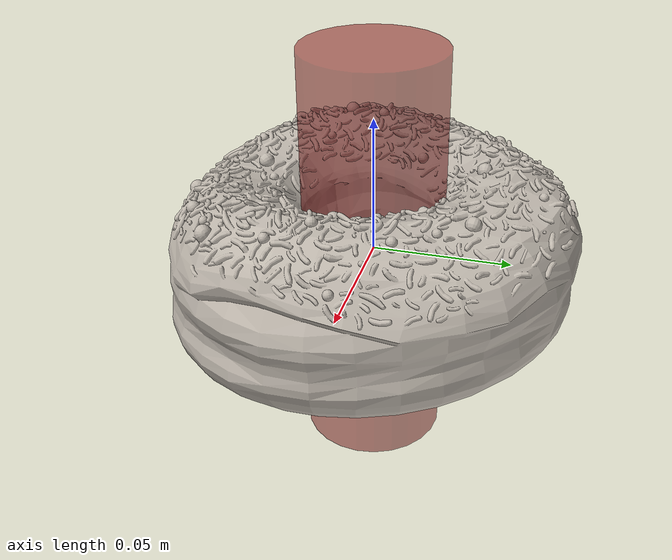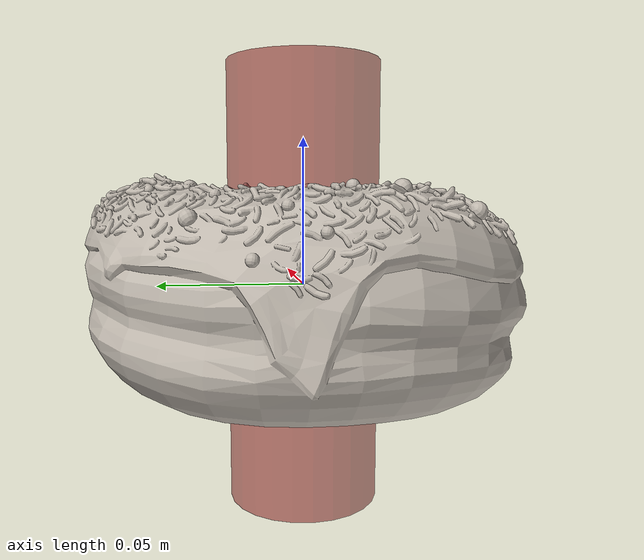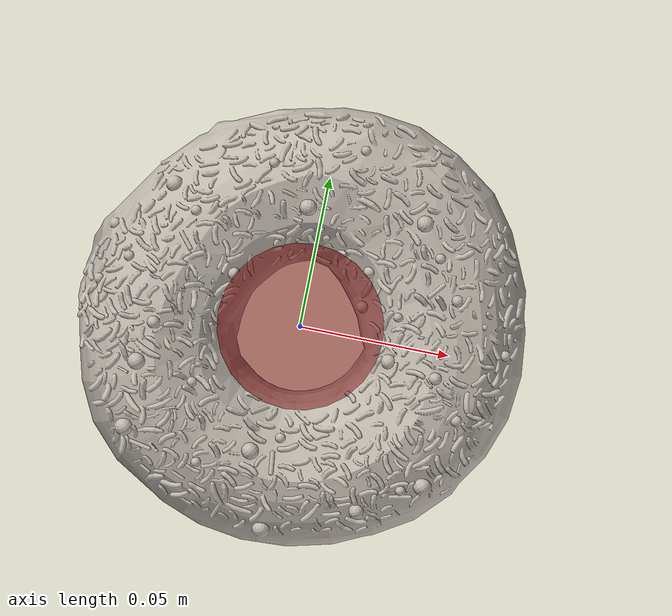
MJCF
<?xml version='1.0' encoding='utf-8'?>
<mujoco model="bottled_water_21">
  <asset>
    <mesh file="visual/model_normalized_0.obj" name="model_normalized_0_vis" scale="0.15 0.15 0.15" refquat="1.0 0.0 0.0 0.0" />
    <texture type="2d" name="image0" file="visual/image0.png" />
    <material name="Base.004" texture="image0" specular="0.5" shininess="0.359999993" />
    </asset>
  <default>
    <default class="region">
      <geom group="1" conaffinity="0" contype="0" rgba="0 1 0 0" />
      </default>
    <default class="collision">
      <geom group="0" rgba="0.5 0 0 0.5" density="1000.0" />
      </default>
    </default>
  <worldbody>
    <body>
      <body name="object">
        <geom solimp="0.998 0.998 0.001" solref="0.001 1" density="100" friction="0.95 0.3 0.1" type="mesh" mesh="model_normalized_0_vis" conaffinity="0" contype="0" group="1" material="Base.004" />
        <geom class="region" name="reg_bbox" type="box" pos="1.872374999999926e-05 2.1221999999999906e-05 4.1354999999999864e-05" size="0.025331432999999997 0.026059848 0.0749125245" />
        <geom class="collision" type="cylinder" size="0.02570 0.07491" pos="0 0 0" />
        </body>
      </body>
    </worldbody>
  </mujoco>
